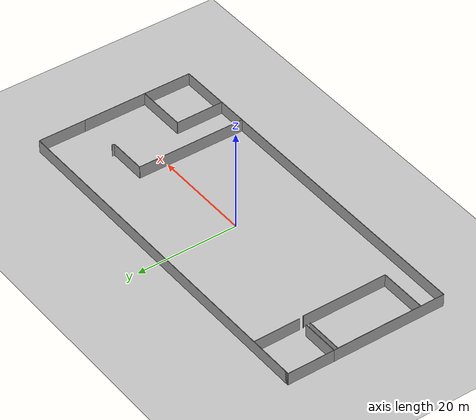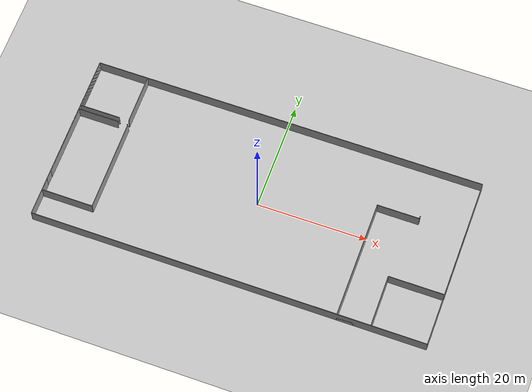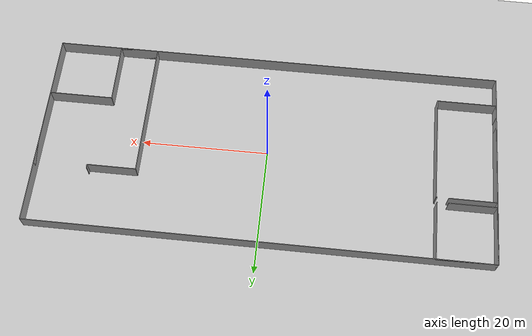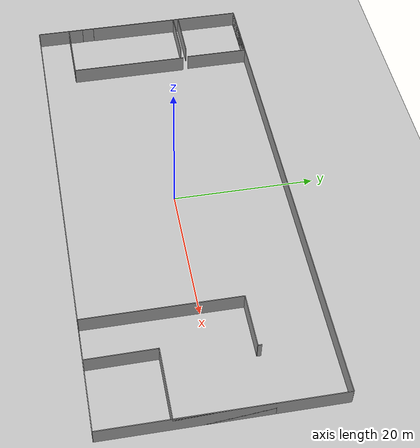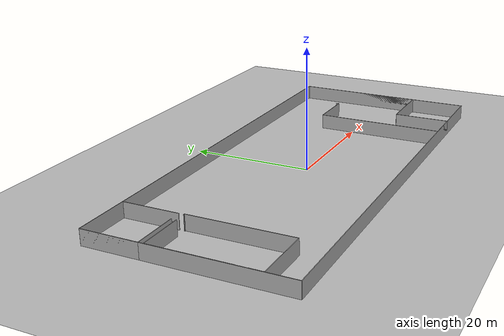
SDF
<sdf version="1.6">
  <world name="default">
    <light name="sun" type="directional">
      <cast_shadows>1</cast_shadows>
      <pose frame="">0 0 10 0 -0 0</pose>
      <diffuse>0.8 0.8 0.8 1</diffuse>
      <specular>0.1 0.1 0.1 1</specular>
      <attenuation>
        <range>1000</range>
        <constant>0.9</constant>
        <linear>0.01</linear>
        <quadratic>0.001</quadratic>
      </attenuation>
      <direction>-0.5 0.5 -1</direction>
    </light>
    <model name="ground_plane">
      <static>1</static>
      <link name="link">
        <collision name="collision">
          <geometry>
            <plane>
              <normal>0 0 1</normal>
              <size>100 100</size>
            </plane>
          </geometry>
          <surface>
            <friction>
              <ode>
                <mu>100</mu>
                <mu2>50</mu2>
              </ode>
              <torsional>
                <ode />
              </torsional>
            </friction>
            <contact>
              <ode />
            </contact>
            <bounce />
          </surface>
          <max_contacts>10</max_contacts>
        </collision>
        <visual name="visual">
          <cast_shadows>0</cast_shadows>
          <geometry>
            <plane>
              <normal>0 0 1</normal>
              <size>100 100</size>
            </plane>
          </geometry>
          <material>
            <script>
              <uri>file://media/materials/scripts/gazebo.material</uri>
              <name>Gazebo/Grey</name>
            </script>
          </material>
        </visual>
        <self_collide>0</self_collide>
        <kinematic>0</kinematic>
        <gravity>1</gravity>
      </link>
    </model>
    <gravity>0 0 -9.8</gravity>
    <magnetic_field>6e-06 2.3e-05 -4.2e-05</magnetic_field>
    <atmosphere type="adiabatic" />
    <physics default="0" name="default_physics" type="ode">
      <max_step_size>0.001</max_step_size>
      <real_time_factor>1</real_time_factor>
      <real_time_update_rate>1000</real_time_update_rate>
    </physics>
    <scene>
      <ambient>0.4 0.4 0.4 1</ambient>
      <background>0.7 0.7 0.7 1</background>
      <shadows>1</shadows>
    </scene>
    <spherical_coordinates>
      <surface_model>EARTH_WGS84</surface_model>
      <latitude_deg>0</latitude_deg>
      <longitude_deg>0</longitude_deg>
      <elevation>0</elevation>
      <heading_deg>0</heading_deg>
    </spherical_coordinates>
  <model name="50053293">
		<static>1</static>
		<link name="Wall_0">
			<collision name="Wall_0_Collision">
				<geometry>
					<box>
						<size>7.43636814056 0.1 2.5</size>
					</box>
				</geometry>
				<pose frame="">3.71818407028 0 1.25 0 0 0</pose>
			</collision>
			<visual name="Wall_0_Visual">
				<pose frame="">3.71818407028 0 1.25 0 0 0</pose>
				<geometry>
					<box>
						<size>7.43636814056 0.1 2.5</size>
					</box>
				</geometry>
				<material>
					<script>
						<uri>file://media/materials/scripts/gazebo.material</uri>
						<name>Gazebo/Grey</name>
					</script>
					<ambient>1 1 1 1</ambient>
				</material>
			</visual>
			<pose frame="">7.43636814056 -9.18572816952 0 0 0 3.14159265359</pose>
		</link>
		<link name="Wall_1">
			<collision name="Wall_1_Collision">
				<geometry>
					<box>
						<size>9.18572816952 0.1 2.5</size>
					</box>
				</geometry>
				<pose frame="">4.59286408476 0 1.25 0 0 0</pose>
			</collision>
			<visual name="Wall_1_Visual">
				<pose frame="">4.59286408476 0 1.25 0 0 0</pose>
				<geometry>
					<box>
						<size>9.18572816952 0.1 2.5</size>
					</box>
				</geometry>
				<material>
					<script>
						<uri>file://media/materials/scripts/gazebo.material</uri>
						<name>Gazebo/Grey</name>
					</script>
					<ambient>1 1 1 1</ambient>
				</material>
			</visual>
			<pose frame="">0.0 -9.18572816952 0 0 0 1.57079632679</pose>
		</link>
		<link name="Wall_2">
			<collision name="Wall_2_Collision">
				<geometry>
					<box>
						<size>9.18953941142 0.1 2.5</size>
					</box>
				</geometry>
				<pose frame="">4.59476970571 0 1.25 0 0 0</pose>
			</collision>
			<visual name="Wall_2_Visual">
				<pose frame="">4.59476970571 0 1.25 0 0 0</pose>
				<geometry>
					<box>
						<size>9.18953941142 0.1 2.5</size>
					</box>
				</geometry>
				<material>
					<script>
						<uri>file://media/materials/scripts/gazebo.material</uri>
						<name>Gazebo/Grey</name>
					</script>
					<ambient>1 1 1 1</ambient>
				</material>
			</visual>
			<pose frame="">0.0 -0.0 0 0 0 0.0</pose>
		</link>
		<link name="Wall_3">
			<collision name="Wall_3_Collision">
				<geometry>
					<box>
						<size>9.18573082702 0.1 2.5</size>
					</box>
				</geometry>
				<pose frame="">4.59286541351 0 1.25 0 0 0</pose>
			</collision>
			<visual name="Wall_3_Visual">
				<pose frame="">4.59286541351 0 1.25 0 0 0</pose>
				<geometry>
					<box>
						<size>9.18573082702 0.1 2.5</size>
					</box>
				</geometry>
				<material>
					<script>
						<uri>file://media/materials/scripts/gazebo.material</uri>
						<name>Gazebo/Grey</name>
					</script>
					<ambient>1 1 1 1</ambient>
				</material>
			</visual>
			<pose frame="">9.18953941142 -0.0 0 0 0 -1.57003566032</pose>
		</link>
		<link name="Wall_4">
			<collision name="Wall_4_Collision">
				<geometry>
					<box>
						<size>9.35736109611 0.1 2.5</size>
					</box>
				</geometry>
				<pose frame="">4.67868054806 0 1.25 0 0 0</pose>
			</collision>
			<visual name="Wall_4_Visual">
				<pose frame="">4.67868054806 0 1.25 0 0 0</pose>
				<geometry>
					<box>
						<size>9.35736109611 0.1 2.5</size>
					</box>
				</geometry>
				<material>
					<script>
						<uri>file://media/materials/scripts/gazebo.material</uri>
						<name>Gazebo/Grey</name>
					</script>
					<ambient>1 1 1 1</ambient>
				</material>
			</visual>
			<pose frame="">9.38518316193 -26.9475128471 0 0 0 3.14159265359</pose>
		</link>
		<link name="Wall_5">
			<collision name="Wall_5_Collision">
				<geometry>
					<box>
						<size>2.16999409258 0.1 2.5</size>
					</box>
				</geometry>
				<pose frame="">1.08499704629 0 1.25 0 0 0</pose>
			</collision>
			<visual name="Wall_5_Visual">
				<pose frame="">1.08499704629 0 1.25 0 0 0</pose>
				<geometry>
					<box>
						<size>2.16999409258 0.1 2.5</size>
					</box>
				</geometry>
				<material>
					<script>
						<uri>file://media/materials/scripts/gazebo.material</uri>
						<name>Gazebo/Grey</name>
					</script>
					<ambient>1 1 1 1</ambient>
				</material>
			</visual>
			<pose frame="">0.0278220658202 -26.9475128471 0 0 0 1.57079632679</pose>
		</link>
		<link name="Wall_6">
			<collision name="Wall_6_Collision">
				<geometry>
					<box>
						<size>13.0547738981 0.1 2.5</size>
					</box>
				</geometry>
				<pose frame="">6.52738694904 0 1.25 0 0 0</pose>
			</collision>
			<visual name="Wall_6_Visual">
				<pose frame="">6.52738694904 0 1.25 0 0 0</pose>
				<geometry>
					<box>
						<size>13.0547738981 0.1 2.5</size>
					</box>
				</geometry>
				<material>
					<script>
						<uri>file://media/materials/scripts/gazebo.material</uri>
						<name>Gazebo/Grey</name>
					</script>
					<ambient>1 1 1 1</ambient>
				</material>
			</visual>
			<pose frame="">0.0278220658202 -23.0293020981 0 0 0 1.57079632679</pose>
		</link>
		<link name="Wall_7">
			<collision name="Wall_7_Collision">
				<geometry>
					<box>
						<size>7.42112317299 0.1 2.5</size>
					</box>
				</geometry>
				<pose frame="">3.71056158649 0 1.25 0 0 0</pose>
			</collision>
			<visual name="Wall_7_Visual">
				<pose frame="">3.71056158649 0 1.25 0 0 0</pose>
				<geometry>
					<box>
						<size>7.42112317299 0.1 2.5</size>
					</box>
				</geometry>
				<material>
					<script>
						<uri>file://media/materials/scripts/gazebo.material</uri>
						<name>Gazebo/Grey</name>
					</script>
					<ambient>1 1 1 1</ambient>
				</material>
			</visual>
			<pose frame="">0.0278220658202 -9.97452820001 0 0 0 0.0</pose>
		</link>
		<link name="Wall_8">
			<collision name="Wall_8_Collision">
				<geometry>
					<box>
						<size>0.177857955015 0.1 2.5</size>
					</box>
				</geometry>
				<pose frame="">0.0889289775073 0 1.25 0 0 0</pose>
			</collision>
			<visual name="Wall_8_Visual">
				<pose frame="">0.0889289775073 0 1.25 0 0 0</pose>
				<geometry>
					<box>
						<size>0.177857955015 0.1 2.5</size>
					</box>
				</geometry>
				<material>
					<script>
						<uri>file://media/materials/scripts/gazebo.material</uri>
						<name>Gazebo/Grey</name>
					</script>
					<ambient>1 1 1 1</ambient>
				</material>
			</visual>
			<pose frame="">9.17111840893 -9.97452820001 0 0 0 0.0</pose>
		</link>
		<link name="Wall_9">
			<collision name="Wall_9_Collision">
				<geometry>
					<box>
						<size>16.9730232652 0.1 2.5</size>
					</box>
				</geometry>
				<pose frame="">8.4865116326 0 1.25 0 0 0</pose>
			</collision>
			<visual name="Wall_9_Visual">
				<pose frame="">8.4865116326 0 1.25 0 0 0</pose>
				<geometry>
					<box>
						<size>16.9730232652 0.1 2.5</size>
					</box>
				</geometry>
				<material>
					<script>
						<uri>file://media/materials/scripts/gazebo.material</uri>
						<name>Gazebo/Grey</name>
					</script>
					<ambient>1 1 1 1</ambient>
				</material>
			</visual>
			<pose frame="">9.34897636395 -9.97452820001 0 0 0 -1.56866312843</pose>
		</link>
		<link name="Wall_10">
			<collision name="Wall_10_Collision">
				<geometry>
					<box>
						<size>6.04132656626 0.1 2.5</size>
					</box>
				</geometry>
				<pose frame="">3.02066328313 0 1.25 0 0 0</pose>
			</collision>
			<visual name="Wall_10_Visual">
				<pose frame="">3.02066328313 0 1.25 0 0 0</pose>
				<geometry>
					<box>
						<size>6.04132656626 0.1 2.5</size>
					</box>
				</geometry>
				<material>
					<script>
						<uri>file://media/materials/scripts/gazebo.material</uri>
						<name>Gazebo/Grey</name>
					</script>
					<ambient>1 1 1 1</ambient>
				</material>
			</visual>
			<pose frame="">61.8206302524 -31.7102947996 0 0 0 3.14159265359</pose>
		</link>
		<link name="Wall_11">
			<collision name="Wall_11_Collision">
				<geometry>
					<box>
						<size>21.7230624599 0.1 2.5</size>
					</box>
				</geometry>
				<pose frame="">10.86153123 0 1.25 0 0 0</pose>
			</collision>
			<visual name="Wall_11_Visual">
				<pose frame="">10.86153123 0 1.25 0 0 0</pose>
				<geometry>
					<box>
						<size>21.7230624599 0.1 2.5</size>
					</box>
				</geometry>
				<material>
					<script>
						<uri>file://media/materials/scripts/gazebo.material</uri>
						<name>Gazebo/Grey</name>
					</script>
					<ambient>1 1 1 1</ambient>
				</material>
			</visual>
			<pose frame="">55.7793036861 -31.7102947996 0 0 0 1.57079632679</pose>
		</link>
		<link name="Wall_12">
			<collision name="Wall_12_Collision">
				<geometry>
					<box>
						<size>7.63849100229 0.1 2.5</size>
					</box>
				</geometry>
				<pose frame="">3.81924550115 0 1.25 0 0 0</pose>
			</collision>
			<visual name="Wall_12_Visual">
				<pose frame="">3.81924550115 0 1.25 0 0 0</pose>
				<geometry>
					<box>
						<size>7.63849100229 0.1 2.5</size>
					</box>
				</geometry>
				<material>
					<script>
						<uri>file://media/materials/scripts/gazebo.material</uri>
						<name>Gazebo/Grey</name>
					</script>
					<ambient>1 1 1 1</ambient>
				</material>
			</visual>
			<pose frame="">55.7793036861 -9.98723233966 0 0 0 0.0</pose>
		</link>
		<link name="Wall_13">
			<collision name="Wall_13_Collision">
				<geometry>
					<box>
						<size>0.522013097968 0.1 2.5</size>
					</box>
				</geometry>
				<pose frame="">0.261006548984 0 1.25 0 0 0</pose>
			</collision>
			<visual name="Wall_13_Visual">
				<pose frame="">0.261006548984 0 1.25 0 0 0</pose>
				<geometry>
					<box>
						<size>0.522013097968 0.1 2.5</size>
					</box>
				</geometry>
				<material>
					<script>
						<uri>file://media/materials/scripts/gazebo.material</uri>
						<name>Gazebo/Grey</name>
					</script>
					<ambient>1 1 1 1</ambient>
				</material>
			</visual>
			<pose frame="">63.4177946884 -9.98723233966 0 0 0 1.57079632679</pose>
		</link>
		<link name="Wall_14">
			<collision name="Wall_14_Collision">
				<geometry>
					<box>
						<size>12.6784772818 0.1 2.5</size>
					</box>
				</geometry>
				<pose frame="">6.33923864091 0 1.25 0 0 0</pose>
			</collision>
			<visual name="Wall_14_Visual">
				<pose frame="">6.33923864091 0 1.25 0 0 0</pose>
				<geometry>
					<box>
						<size>12.6784772818 0.1 2.5</size>
					</box>
				</geometry>
				<material>
					<script>
						<uri>file://media/materials/scripts/gazebo.material</uri>
						<name>Gazebo/Grey</name>
					</script>
					<ambient>1 1 1 1</ambient>
				</material>
			</visual>
			<pose frame="">71.7771185741 -9.46521924169 0 0 0 -1.57079632679</pose>
		</link>
		<link name="Wall_15">
			<collision name="Wall_15_Collision">
				<geometry>
					<box>
						<size>10.0165789022 0.1 2.5</size>
					</box>
				</geometry>
				<pose frame="">5.00828945112 0 1.25 0 0 0</pose>
			</collision>
			<visual name="Wall_15_Visual">
				<pose frame="">5.00828945112 0 1.25 0 0 0</pose>
				<geometry>
					<box>
						<size>10.0165789022 0.1 2.5</size>
					</box>
				</geometry>
				<material>
					<script>
						<uri>file://media/materials/scripts/gazebo.material</uri>
						<name>Gazebo/Grey</name>
					</script>
					<ambient>1 1 1 1</ambient>
				</material>
			</visual>
			<pose frame="">71.7771185741 -22.1436965235 0 0 0 3.14159265359</pose>
		</link>
		<link name="Wall_16">
			<collision name="Wall_16_Collision">
				<geometry>
					<box>
						<size>9.56678699738 0.1 2.5</size>
					</box>
				</geometry>
				<pose frame="">4.78339349869 0 1.25 0 0 0</pose>
			</collision>
			<visual name="Wall_16_Visual">
				<pose frame="">4.78339349869 0 1.25 0 0 0</pose>
				<geometry>
					<box>
						<size>9.56678699738 0.1 2.5</size>
					</box>
				</geometry>
				<material>
					<script>
						<uri>file://media/materials/scripts/gazebo.material</uri>
						<name>Gazebo/Grey</name>
					</script>
					<ambient>1 1 1 1</ambient>
				</material>
			</visual>
			<pose frame="">61.7605396719 -22.1436965235 0 0 0 -1.56451511915</pose>
		</link>
		<link name="Wall_17">
			<collision name="Wall_17_Collision">
				<geometry>
					<box>
						<size>31.7102947996 0.1 2.5</size>
					</box>
				</geometry>
				<pose frame="">15.8551473998 0 1.25 0 0 0</pose>
			</collision>
			<visual name="Wall_17_Visual">
				<pose frame="">15.8551473998 0 1.25 0 0 0</pose>
				<geometry>
					<box>
						<size>31.7102947996 0.1 2.5</size>
					</box>
				</geometry>
				<material>
					<script>
						<uri>file://media/materials/scripts/gazebo.material</uri>
						<name>Gazebo/Grey</name>
					</script>
					<ambient>1 1 1 1</ambient>
				</material>
			</visual>
			<pose frame="">71.7771185741 -31.7102947996 0 0 0 1.57079632679</pose>
		</link>
		<link name="Wall_18">
			<collision name="Wall_18_Collision">
				<geometry>
					<box>
						<size>71.7771185741 0.1 2.5</size>
					</box>
				</geometry>
				<pose frame="">35.888559287 0 1.25 0 0 0</pose>
			</collision>
			<visual name="Wall_18_Visual">
				<pose frame="">35.888559287 0 1.25 0 0 0</pose>
				<geometry>
					<box>
						<size>71.7771185741 0.1 2.5</size>
					</box>
				</geometry>
				<material>
					<script>
						<uri>file://media/materials/scripts/gazebo.material</uri>
						<name>Gazebo/Grey</name>
					</script>
					<ambient>1 1 1 1</ambient>
				</material>
			</visual>
			<pose frame="">71.7771185741 -31.7102947996 0 0 0 3.14159265359</pose>
		</link>
		<link name="Wall_19">
			<collision name="Wall_19_Collision">
				<geometry>
					<box>
						<size>31.7102947996 0.1 2.5</size>
					</box>
				</geometry>
				<pose frame="">15.8551473998 0 1.25 0 0 0</pose>
			</collision>
			<visual name="Wall_19_Visual">
				<pose frame="">15.8551473998 0 1.25 0 0 0</pose>
				<geometry>
					<box>
						<size>31.7102947996 0.1 2.5</size>
					</box>
				</geometry>
				<material>
					<script>
						<uri>file://media/materials/scripts/gazebo.material</uri>
						<name>Gazebo/Grey</name>
					</script>
					<ambient>1 1 1 1</ambient>
				</material>
			</visual>
			<pose frame="">0.0 -31.7102947996 0 0 0 1.57079632679</pose>
		</link>
		<link name="Wall_20">
			<collision name="Wall_20_Collision">
				<geometry>
					<box>
						<size>71.7771185741 0.1 2.5</size>
					</box>
				</geometry>
				<pose frame="">35.888559287 0 1.25 0 0 0</pose>
			</collision>
			<visual name="Wall_20_Visual">
				<pose frame="">35.888559287 0 1.25 0 0 0</pose>
				<geometry>
					<box>
						<size>71.7771185741 0.1 2.5</size>
					</box>
				</geometry>
				<material>
					<script>
						<uri>file://media/materials/scripts/gazebo.material</uri>
						<name>Gazebo/Grey</name>
					</script>
					<ambient>1 1 1 1</ambient>
				</material>
			</visual>
			<pose frame="">0.0 -0.0 0 0 0 0.0</pose>
		</link>
		<pose frame="">-35.85 15.8602947996 0 0 0 0</pose>
	</model>
</world>
</sdf>
